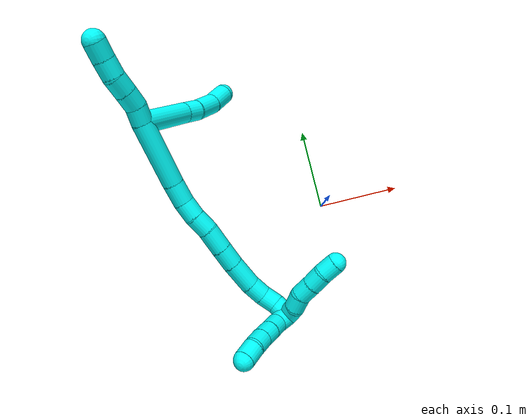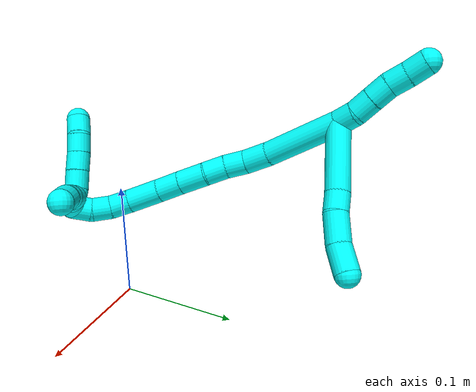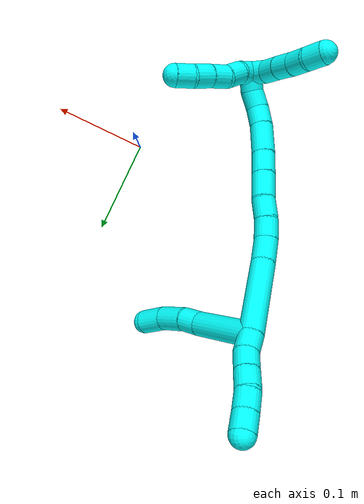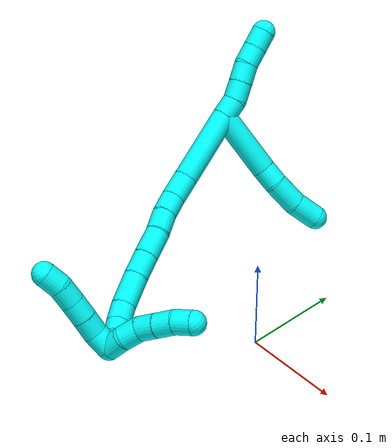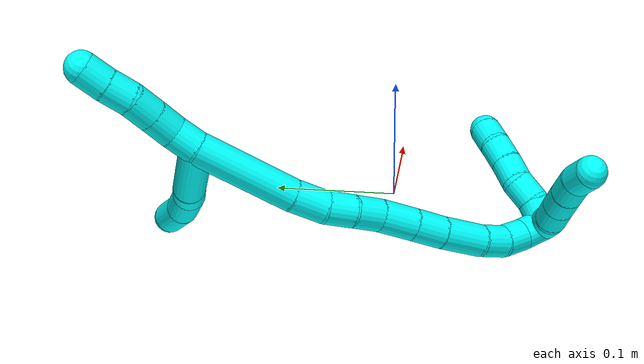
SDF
<sdf version="1.7">
 <world name="default">
  <model name="3">
   <static>0</static>
   <link name="3">
    <collision name="collision-cylinder-e_1_2_8">
     <pose>0.006269 0.002891 -0.034601 -3.05822 0.178631 -2.26987</pose>
     <geometry><cylinder><radius>0.0125</radius><length>0.070567</length></cylinder></geometry>
     <surface>
      <friction><ode><mu>1.16</mu><mu2>1.16</mu2><slip1>0</slip1><slip2>0</slip2></ode></friction>
      <contact><ode><kp>1e+06</kp><kd>1</kd><max_vel>0</max_vel><min_depth>0.001</min_depth></ode></contact>
     </surface>
    </collision>
    <visual name="visual-cylinder-e_1_2_8">
     <pose>0.006269 0.002891 -0.034601 -3.05822 0.178631 -2.26987</pose>
     <geometry><cylinder><radius>0.0125</radius><length>0.070567</length></cylinder></geometry>
     <material><ambient>0.003922 1 0.996078 1</ambient></material>
    </visual>
    <collision name="collision-cylinder-e_2_8_9">
     <pose>0.01573 0.007449 -0.078691 -2.96774 0.319937 -2.15115</pose>
     <geometry><cylinder><radius>0.0125</radius><length>0.020296</length></cylinder></geometry>
     <surface>
      <friction><ode><mu>1.16</mu><mu2>1.16</mu2><slip1>0</slip1><slip2>0</slip2></ode></friction>
      <contact><ode><kp>1e+06</kp><kd>1</kd><max_vel>0</max_vel><min_depth>0.001</min_depth></ode></contact>
     </surface>
    </collision>
    <visual name="visual-cylinder-e_2_8_9">
     <pose>0.01573 0.007449 -0.078691 -2.96774 0.319937 -2.15115</pose>
     <geometry><cylinder><radius>0.0125</radius><length>0.020296</length></cylinder></geometry>
     <material><ambient>0.003922 1 0.996078 1</ambient></material>
    </visual>
    <collision name="collision-cylinder-e_3_9_10">
     <pose>0.020851 0.011928 -0.103269 -2.95734 0.125012 -1.19084</pose>
     <geometry><cylinder><radius>0.0125</radius><length>0.030942</length></cylinder></geometry>
     <surface>
      <friction><ode><mu>1.16</mu><mu2>1.16</mu2><slip1>0</slip1><slip2>0</slip2></ode></friction>
      <contact><ode><kp>1e+06</kp><kd>1</kd><max_vel>0</max_vel><min_depth>0.001</min_depth></ode></contact>
     </surface>
    </collision>
    <visual name="visual-cylinder-e_3_9_10">
     <pose>0.020851 0.011928 -0.103269 -2.95734 0.125012 -1.19084</pose>
     <geometry><cylinder><radius>0.0125</radius><length>0.030942</length></cylinder></geometry>
     <material><ambient>0.003922 1 0.996078 1</ambient></material>
    </visual>
    <collision name="collision-cylinder-e_4_10_6">
     <pose>0.022864 0.019588 -0.131597 -2.79057 0.005952 -0.033558</pose>
     <geometry><cylinder><radius>0.0125</radius><length>0.028195</length></cylinder></geometry>
     <surface>
      <friction><ode><mu>1.16</mu><mu2>1.16</mu2><slip1>0</slip1><slip2>0</slip2></ode></friction>
      <contact><ode><kp>1e+06</kp><kd>1</kd><max_vel>0</max_vel><min_depth>0.001</min_depth></ode></contact>
     </surface>
    </collision>
    <visual name="visual-cylinder-e_4_10_6">
     <pose>0.022864 0.019588 -0.131597 -2.79057 0.005952 -0.033558</pose>
     <geometry><cylinder><radius>0.0125</radius><length>0.028195</length></cylinder></geometry>
     <material><ambient>0.003922 1 0.996078 1</ambient></material>
    </visual>
    <collision name="collision-cylinder-e_1_2_11">
     <pose>-0.004847 0.008318 0.002706 -1.25623 -0.505963 0.37117</pose>
     <geometry><cylinder><radius>0.0125</radius><length>0.02</length></cylinder></geometry>
     <surface>
      <friction><ode><mu>1.16</mu><mu2>1.16</mu2><slip1>0</slip1><slip2>0</slip2></ode></friction>
      <contact><ode><kp>1e+06</kp><kd>1</kd><max_vel>0</max_vel><min_depth>0.001</min_depth></ode></contact>
     </surface>
    </collision>
    <visual name="visual-cylinder-e_1_2_11">
     <pose>-0.004847 0.008318 0.002706 -1.25623 -0.505963 0.37117</pose>
     <geometry><cylinder><radius>0.0125</radius><length>0.02</length></cylinder></geometry>
     <material><ambient>0.003922 1 0.996078 1</ambient></material>
    </visual>
    <collision name="collision-cylinder-e_2_11_12">
     <pose>-0.015046 0.023404 0.010467 -0.929395 -0.564817 0.288899</pose>
     <geometry><cylinder><radius>0.0125</radius><length>0.02</length></cylinder></geometry>
     <surface>
      <friction><ode><mu>1.16</mu><mu2>1.16</mu2><slip1>0</slip1><slip2>0</slip2></ode></friction>
      <contact><ode><kp>1e+06</kp><kd>1</kd><max_vel>0</max_vel><min_depth>0.001</min_depth></ode></contact>
     </surface>
    </collision>
    <visual name="visual-cylinder-e_2_11_12">
     <pose>-0.015046 0.023404 0.010467 -0.929395 -0.564817 0.288899</pose>
     <geometry><cylinder><radius>0.0125</radius><length>0.02</length></cylinder></geometry>
     <material><ambient>0.003922 1 0.996078 1</ambient></material>
    </visual>
    <collision name="collision-cylinder-e_3_12_13">
     <pose>-0.025897 0.036807 0.020594 -0.917978 -0.582193 0.29399</pose>
     <geometry><cylinder><radius>0.0125</radius><length>0.02</length></cylinder></geometry>
     <surface>
      <friction><ode><mu>1.16</mu><mu2>1.16</mu2><slip1>0</slip1><slip2>0</slip2></ode></friction>
      <contact><ode><kp>1e+06</kp><kd>1</kd><max_vel>0</max_vel><min_depth>0.001</min_depth></ode></contact>
     </surface>
    </collision>
    <visual name="visual-cylinder-e_3_12_13">
     <pose>-0.025897 0.036807 0.020594 -0.917978 -0.582193 0.29399</pose>
     <geometry><cylinder><radius>0.0125</radius><length>0.02</length></cylinder></geometry>
     <material><ambient>0.003922 1 0.996078 1</ambient></material>
    </visual>
    <collision name="collision-cylinder-e_4_13_14">
     <pose>-0.03733 0.050841 0.028835 -1.16631 -0.635363 0.427217</pose>
     <geometry><cylinder><radius>0.0125</radius><length>0.02</length></cylinder></geometry>
     <surface>
      <friction><ode><mu>1.16</mu><mu2>1.16</mu2><slip1>0</slip1><slip2>0</slip2></ode></friction>
      <contact><ode><kp>1e+06</kp><kd>1</kd><max_vel>0</max_vel><min_depth>0.001</min_depth></ode></contact>
     </surface>
    </collision>
    <visual name="visual-cylinder-e_4_13_14">
     <pose>-0.03733 0.050841 0.028835 -1.16631 -0.635363 0.427217</pose>
     <geometry><cylinder><radius>0.0125</radius><length>0.02</length></cylinder></geometry>
     <material><ambient>0.003922 1 0.996078 1</ambient></material>
    </visual>
    <collision name="collision-cylinder-e_5_14_5">
     <pose>-0.048503 0.065988 0.035544 -1.14201 -0.551318 0.359488</pose>
     <geometry><cylinder><radius>0.0125</radius><length>0.02</length></cylinder></geometry>
     <surface>
      <friction><ode><mu>1.16</mu><mu2>1.16</mu2><slip1>0</slip1><slip2>0</slip2></ode></friction>
      <contact><ode><kp>1e+06</kp><kd>1</kd><max_vel>0</max_vel><min_depth>0.001</min_depth></ode></contact>
     </surface>
    </collision>
    <visual name="visual-cylinder-e_5_14_5">
     <pose>-0.048503 0.065988 0.035544 -1.14201 -0.551318 0.359488</pose>
     <geometry><cylinder><radius>0.0125</radius><length>0.02</length></cylinder></geometry>
     <material><ambient>0.003922 1 0.996078 1</ambient></material>
    </visual>
    <collision name="collision-cylinder-e_1_2_15">
     <pose>0.024172 -0.029477 -0.009273 1.87557 0.663817 0.878283</pose>
     <geometry><cylinder><radius>0.0125</radius><length>0.078465</length></cylinder></geometry>
     <surface>
      <friction><ode><mu>1.16</mu><mu2>1.16</mu2><slip1>0</slip1><slip2>0</slip2></ode></friction>
      <contact><ode><kp>1e+06</kp><kd>1</kd><max_vel>0</max_vel><min_depth>0.001</min_depth></ode></contact>
     </surface>
    </collision>
    <visual name="visual-cylinder-e_1_2_15">
     <pose>0.024172 -0.029477 -0.009273 1.87557 0.663817 0.878283</pose>
     <geometry><cylinder><radius>0.0125</radius><length>0.078465</length></cylinder></geometry>
     <material><ambient>0.003922 1 0.996078 1</ambient></material>
    </visual>
    <collision name="collision-cylinder-e_2_15_16">
     <pose>0.057369 -0.068147 -0.020948 1.82646 0.759673 0.954285</pose>
     <geometry><cylinder><radius>0.0125</radius><length>0.026209</length></cylinder></geometry>
     <surface>
      <friction><ode><mu>1.16</mu><mu2>1.16</mu2><slip1>0</slip1><slip2>0</slip2></ode></friction>
      <contact><ode><kp>1e+06</kp><kd>1</kd><max_vel>0</max_vel><min_depth>0.001</min_depth></ode></contact>
     </surface>
    </collision>
    <visual name="visual-cylinder-e_2_15_16">
     <pose>0.057369 -0.068147 -0.020948 1.82646 0.759673 0.954285</pose>
     <geometry><cylinder><radius>0.0125</radius><length>0.026209</length></cylinder></geometry>
     <material><ambient>0.003922 1 0.996078 1</ambient></material>
    </visual>
    <collision name="collision-cylinder-e_3_16_17">
     <pose>0.075382 -0.083385 -0.024685 1.78791 0.967638 1.15839</pose>
     <geometry><cylinder><radius>0.0125</radius><length>0.021828</length></cylinder></geometry>
     <surface>
      <friction><ode><mu>1.16</mu><mu2>1.16</mu2><slip1>0</slip1><slip2>0</slip2></ode></friction>
      <contact><ode><kp>1e+06</kp><kd>1</kd><max_vel>0</max_vel><min_depth>0.001</min_depth></ode></contact>
     </surface>
    </collision>
    <visual name="visual-cylinder-e_3_16_17">
     <pose>0.075382 -0.083385 -0.024685 1.78791 0.967638 1.15839</pose>
     <geometry><cylinder><radius>0.0125</radius><length>0.021828</length></cylinder></geometry>
     <material><ambient>0.003922 1 0.996078 1</ambient></material>
    </visual>
    <collision name="collision-cylinder-e_4_17_18">
     <pose>0.093966 -0.094844 -0.028695 2.03 1.00915 1.45358</pose>
     <geometry><cylinder><radius>0.0125</radius><length>0.022675</length></cylinder></geometry>
     <surface>
      <friction><ode><mu>1.16</mu><mu2>1.16</mu2><slip1>0</slip1><slip2>0</slip2></ode></friction>
      <contact><ode><kp>1e+06</kp><kd>1</kd><max_vel>0</max_vel><min_depth>0.001</min_depth></ode></contact>
     </surface>
    </collision>
    <visual name="visual-cylinder-e_4_17_18">
     <pose>0.093966 -0.094844 -0.028695 2.03 1.00915 1.45358</pose>
     <geometry><cylinder><radius>0.0125</radius><length>0.022675</length></cylinder></geometry>
     <material><ambient>0.003922 1 0.996078 1</ambient></material>
    </visual>
    <collision name="collision-cylinder-e_5_18_19">
     <pose>0.114623 -0.10897 -0.034352 1.90034 0.87646 1.16053</pose>
     <geometry><cylinder><radius>0.0125</radius><length>0.028786</length></cylinder></geometry>
     <surface>
      <friction><ode><mu>1.16</mu><mu2>1.16</mu2><slip1>0</slip1><slip2>0</slip2></ode></friction>
      <contact><ode><kp>1e+06</kp><kd>1</kd><max_vel>0</max_vel><min_depth>0.001</min_depth></ode></contact>
     </surface>
    </collision>
    <visual name="visual-cylinder-e_5_18_19">
     <pose>0.114623 -0.10897 -0.034352 1.90034 0.87646 1.16053</pose>
     <geometry><cylinder><radius>0.0125</radius><length>0.028786</length></cylinder></geometry>
     <material><ambient>0.003922 1 0.996078 1</ambient></material>
    </visual>
    <collision name="collision-cylinder-e_6_19_20">
     <pose>0.135288 -0.125231 -0.04016 1.92931 0.872651 1.18432</pose>
     <geometry><cylinder><radius>0.0125</radius><length>0.025075</length></cylinder></geometry>
     <surface>
      <friction><ode><mu>1.16</mu><mu2>1.16</mu2><slip1>0</slip1><slip2>0</slip2></ode></friction>
      <contact><ode><kp>1e+06</kp><kd>1</kd><max_vel>0</max_vel><min_depth>0.001</min_depth></ode></contact>
     </surface>
    </collision>
    <visual name="visual-cylinder-e_6_19_20">
     <pose>0.135288 -0.125231 -0.04016 1.92931 0.872651 1.18432</pose>
     <geometry><cylinder><radius>0.0125</radius><length>0.025075</length></cylinder></geometry>
     <material><ambient>0.003922 1 0.996078 1</ambient></material>
    </visual>
    <collision name="collision-cylinder-e_7_20_21">
     <pose>0.159094 -0.14231 -0.046972 1.96668 0.941855 1.30557</pose>
     <geometry><cylinder><radius>0.0125</radius><length>0.035124</length></cylinder></geometry>
     <surface>
      <friction><ode><mu>1.16</mu><mu2>1.16</mu2><slip1>0</slip1><slip2>0</slip2></ode></friction>
      <contact><ode><kp>1e+06</kp><kd>1</kd><max_vel>0</max_vel><min_depth>0.001</min_depth></ode></contact>
     </surface>
    </collision>
    <visual name="visual-cylinder-e_7_20_21">
     <pose>0.159094 -0.14231 -0.046972 1.96668 0.941855 1.30557</pose>
     <geometry><cylinder><radius>0.0125</radius><length>0.035124</length></cylinder></geometry>
     <material><ambient>0.003922 1 0.996078 1</ambient></material>
    </visual>
    <collision name="collision-cylinder-e_8_21_22">
     <pose>0.182922 -0.156049 -0.053412 2.0993 1.10241 1.63921</pose>
     <geometry><cylinder><radius>0.0125</radius><length>0.021577</length></cylinder></geometry>
     <surface>
      <friction><ode><mu>1.16</mu><mu2>1.16</mu2><slip1>0</slip1><slip2>0</slip2></ode></friction>
      <contact><ode><kp>1e+06</kp><kd>1</kd><max_vel>0</max_vel><min_depth>0.001</min_depth></ode></contact>
     </surface>
    </collision>
    <visual name="visual-cylinder-e_8_21_22">
     <pose>0.182922 -0.156049 -0.053412 2.0993 1.10241 1.63921</pose>
     <geometry><cylinder><radius>0.0125</radius><length>0.021577</length></cylinder></geometry>
     <material><ambient>0.003922 1 0.996078 1</ambient></material>
    </visual>
    <collision name="collision-cylinder-e_9_22_23">
     <pose>0.202495 -0.16178 -0.056724 2.08254 1.39666 1.92386</pose>
     <geometry><cylinder><radius>0.0125</radius><length>0.020198</length></cylinder></geometry>
     <surface>
      <friction><ode><mu>1.16</mu><mu2>1.16</mu2><slip1>0</slip1><slip2>0</slip2></ode></friction>
      <contact><ode><kp>1e+06</kp><kd>1</kd><max_vel>0</max_vel><min_depth>0.001</min_depth></ode></contact>
     </surface>
    </collision>
    <visual name="visual-cylinder-e_9_22_23">
     <pose>0.202495 -0.16178 -0.056724 2.08254 1.39666 1.92386</pose>
     <geometry><cylinder><radius>0.0125</radius><length>0.020198</length></cylinder></geometry>
     <material><ambient>0.003922 1 0.996078 1</ambient></material>
    </visual>
    <collision name="collision-cylinder-e_10_23_1">
     <pose>0.222057 -0.164965 -0.055258 0.620031 1.28219 0.469306</pose>
     <geometry><cylinder><radius>0.0125</radius><length>0.020063</length></cylinder></geometry>
     <surface>
      <friction><ode><mu>1.16</mu><mu2>1.16</mu2><slip1>0</slip1><slip2>0</slip2></ode></friction>
      <contact><ode><kp>1e+06</kp><kd>1</kd><max_vel>0</max_vel><min_depth>0.001</min_depth></ode></contact>
     </surface>
    </collision>
    <visual name="visual-cylinder-e_10_23_1">
     <pose>0.222057 -0.164965 -0.055258 0.620031 1.28219 0.469306</pose>
     <geometry><cylinder><radius>0.0125</radius><length>0.020063</length></cylinder></geometry>
     <material><ambient>0.003922 1 0.996078 1</ambient></material>
    </visual>
    <collision name="collision-cylinder-e_1_1_24">
     <pose>0.228871 -0.168778 -0.043579 0.226313 -0.284085 -0.0325</pose>
     <geometry><cylinder><radius>0.0125</radius><length>0.02</length></cylinder></geometry>
     <surface>
      <friction><ode><mu>1.16</mu><mu2>1.16</mu2><slip1>0</slip1><slip2>0</slip2></ode></friction>
      <contact><ode><kp>1e+06</kp><kd>1</kd><max_vel>0</max_vel><min_depth>0.001</min_depth></ode></contact>
     </surface>
    </collision>
    <visual name="visual-cylinder-e_1_1_24">
     <pose>0.228871 -0.168778 -0.043579 0.226313 -0.284085 -0.0325</pose>
     <geometry><cylinder><radius>0.0125</radius><length>0.02</length></cylinder></geometry>
     <material><ambient>0.003922 1 0.996078 1</ambient></material>
    </visual>
    <collision name="collision-cylinder-e_2_24_25">
     <pose>0.225039 -0.170884 -0.024278 -0.004771 -0.103106 0.000246</pose>
     <geometry><cylinder><radius>0.0125</radius><length>0.02</length></cylinder></geometry>
     <surface>
      <friction><ode><mu>1.16</mu><mu2>1.16</mu2><slip1>0</slip1><slip2>0</slip2></ode></friction>
      <contact><ode><kp>1e+06</kp><kd>1</kd><max_vel>0</max_vel><min_depth>0.001</min_depth></ode></contact>
     </surface>
    </collision>
    <visual name="visual-cylinder-e_2_24_25">
     <pose>0.225039 -0.170884 -0.024278 -0.004771 -0.103106 0.000246</pose>
     <geometry><cylinder><radius>0.0125</radius><length>0.02</length></cylinder></geometry>
     <material><ambient>0.003922 1 0.996078 1</ambient></material>
    </visual>
    <collision name="collision-cylinder-e_3_25_26">
     <pose>0.222688 -0.171146 -0.004424 0.031214 -0.132606 -0.002073</pose>
     <geometry><cylinder><radius>0.0125</radius><length>0.02</length></cylinder></geometry>
     <surface>
      <friction><ode><mu>1.16</mu><mu2>1.16</mu2><slip1>0</slip1><slip2>0</slip2></ode></friction>
      <contact><ode><kp>1e+06</kp><kd>1</kd><max_vel>0</max_vel><min_depth>0.001</min_depth></ode></contact>
     </surface>
    </collision>
    <visual name="visual-cylinder-e_3_25_26">
     <pose>0.222688 -0.171146 -0.004424 0.031214 -0.132606 -0.002073</pose>
     <geometry><cylinder><radius>0.0125</radius><length>0.02</length></cylinder></geometry>
     <material><ambient>0.003922 1 0.996078 1</ambient></material>
    </visual>
    <collision name="collision-cylinder-e_4_26_27">
     <pose>0.220664 -0.171702 0.015456 0.024721 -0.070174 -0.000868</pose>
     <geometry><cylinder><radius>0.0125</radius><length>0.02</length></cylinder></geometry>
     <surface>
      <friction><ode><mu>1.16</mu><mu2>1.16</mu2><slip1>0</slip1><slip2>0</slip2></ode></friction>
      <contact><ode><kp>1e+06</kp><kd>1</kd><max_vel>0</max_vel><min_depth>0.001</min_depth></ode></contact>
     </surface>
    </collision>
    <visual name="visual-cylinder-e_4_26_27">
     <pose>0.220664 -0.171702 0.015456 0.024721 -0.070174 -0.000868</pose>
     <geometry><cylinder><radius>0.0125</radius><length>0.02</length></cylinder></geometry>
     <material><ambient>0.003922 1 0.996078 1</ambient></material>
    </visual>
    <collision name="collision-cylinder-e_5_27_4">
     <pose>0.219361 -0.174727 0.035015 0.282073 -0.060272 -0.00856</pose>
     <geometry><cylinder><radius>0.0125</radius><length>0.02</length></cylinder></geometry>
     <surface>
      <friction><ode><mu>1.16</mu><mu2>1.16</mu2><slip1>0</slip1><slip2>0</slip2></ode></friction>
      <contact><ode><kp>1e+06</kp><kd>1</kd><max_vel>0</max_vel><min_depth>0.001</min_depth></ode></contact>
     </surface>
    </collision>
    <visual name="visual-cylinder-e_5_27_4">
     <pose>0.219361 -0.174727 0.035015 0.282073 -0.060272 -0.00856</pose>
     <geometry><cylinder><radius>0.0125</radius><length>0.02</length></cylinder></geometry>
     <material><ambient>0.003922 1 0.996078 1</ambient></material>
    </visual>
    <collision name="collision-cylinder-e_1_1_28">
     <pose>0.233685 -0.157093 -0.050671 -1.33771 0.202469 -0.160235</pose>
     <geometry><cylinder><radius>0.0125</radius><length>0.02</length></cylinder></geometry>
     <surface>
      <friction><ode><mu>1.16</mu><mu2>1.16</mu2><slip1>0</slip1><slip2>0</slip2></ode></friction>
      <contact><ode><kp>1e+06</kp><kd>1</kd><max_vel>0</max_vel><min_depth>0.001</min_depth></ode></contact>
     </surface>
    </collision>
    <visual name="visual-cylinder-e_1_1_28">
     <pose>0.233685 -0.157093 -0.050671 -1.33771 0.202469 -0.160235</pose>
     <geometry><cylinder><radius>0.0125</radius><length>0.02</length></cylinder></geometry>
     <material><ambient>0.003922 1 0.996078 1</ambient></material>
    </visual>
    <collision name="collision-cylinder-e_2_28_29">
     <pose>0.235845 -0.137569 -0.048073 -1.53726 0.014948 -0.014455</pose>
     <geometry><cylinder><radius>0.0125</radius><length>0.02</length></cylinder></geometry>
     <surface>
      <friction><ode><mu>1.16</mu><mu2>1.16</mu2><slip1>0</slip1><slip2>0</slip2></ode></friction>
      <contact><ode><kp>1e+06</kp><kd>1</kd><max_vel>0</max_vel><min_depth>0.001</min_depth></ode></contact>
     </surface>
    </collision>
    <visual name="visual-cylinder-e_2_28_29">
     <pose>0.235845 -0.137569 -0.048073 -1.53726 0.014948 -0.014455</pose>
     <geometry><cylinder><radius>0.0125</radius><length>0.02</length></cylinder></geometry>
     <material><ambient>0.003922 1 0.996078 1</ambient></material>
    </visual>
    <collision name="collision-cylinder-e_3_29_30">
     <pose>0.239257 -0.118175 -0.048737 -1.67664 0.332315 -0.368697</pose>
     <geometry><cylinder><radius>0.0125</radius><length>0.02</length></cylinder></geometry>
     <surface>
      <friction><ode><mu>1.16</mu><mu2>1.16</mu2><slip1>0</slip1><slip2>0</slip2></ode></friction>
      <contact><ode><kp>1e+06</kp><kd>1</kd><max_vel>0</max_vel><min_depth>0.001</min_depth></ode></contact>
     </surface>
    </collision>
    <visual name="visual-cylinder-e_3_29_30">
     <pose>0.239257 -0.118175 -0.048737 -1.67664 0.332315 -0.368697</pose>
     <geometry><cylinder><radius>0.0125</radius><length>0.02</length></cylinder></geometry>
     <material><ambient>0.003922 1 0.996078 1</ambient></material>
    </visual>
    <collision name="collision-cylinder-e_4_30_31">
     <pose>0.245347 -0.09927 -0.051021 -1.7052 0.286709 -0.327398</pose>
     <geometry><cylinder><radius>0.0125</radius><length>0.02</length></cylinder></geometry>
     <surface>
      <friction><ode><mu>1.16</mu><mu2>1.16</mu2><slip1>0</slip1><slip2>0</slip2></ode></friction>
      <contact><ode><kp>1e+06</kp><kd>1</kd><max_vel>0</max_vel><min_depth>0.001</min_depth></ode></contact>
     </surface>
    </collision>
    <visual name="visual-cylinder-e_4_30_31">
     <pose>0.245347 -0.09927 -0.051021 -1.7052 0.286709 -0.327398</pose>
     <geometry><cylinder><radius>0.0125</radius><length>0.02</length></cylinder></geometry>
     <material><ambient>0.003922 1 0.996078 1</ambient></material>
    </visual>
    <collision name="collision-cylinder-e_5_31_3">
     <pose>0.251943 -0.081012 -0.055339 -1.90435 0.386312 -0.536321</pose>
     <geometry><cylinder><radius>0.0125</radius><length>0.02</length></cylinder></geometry>
     <surface>
      <friction><ode><mu>1.16</mu><mu2>1.16</mu2><slip1>0</slip1><slip2>0</slip2></ode></friction>
      <contact><ode><kp>1e+06</kp><kd>1</kd><max_vel>0</max_vel><min_depth>0.001</min_depth></ode></contact>
     </surface>
    </collision>
    <visual name="visual-cylinder-e_5_31_3">
     <pose>0.251943 -0.081012 -0.055339 -1.90435 0.386312 -0.536321</pose>
     <geometry><cylinder><radius>0.0125</radius><length>0.02</length></cylinder></geometry>
     <material><ambient>0.003922 1 0.996078 1</ambient></material>
    </visual>
    <collision name="collision-sphere-3">
     <pose>0.255711 -0.07226 -0.058372 0 -0 0</pose>
     <geometry><sphere><radius>0.0125</radius></sphere></geometry>
     <surface>
      <friction><ode><mu>1.16</mu><mu2>1.16</mu2><slip1>0</slip1><slip2>0</slip2></ode></friction>
      <contact><ode><kp>1e+06</kp><kd>1</kd><max_vel>0</max_vel><min_depth>0.001</min_depth></ode></contact>
     </surface>
    </collision>
    <visual name="visual-sphere-3">
     <pose>0.255711 -0.07226 -0.058372 0 -0 0</pose>
     <geometry><sphere><radius>0.0125</radius></sphere></geometry>
     <material><ambient>0.003922 1 0.996078 1</ambient></material>
    </visual>
    <collision name="collision-sphere-31">
     <pose>0.248175 -0.089765 -0.052306 0 -0 0</pose>
     <geometry><sphere><radius>0.0125</radius></sphere></geometry>
     <surface>
      <friction><ode><mu>1.16</mu><mu2>1.16</mu2><slip1>0</slip1><slip2>0</slip2></ode></friction>
      <contact><ode><kp>1e+06</kp><kd>1</kd><max_vel>0</max_vel><min_depth>0.001</min_depth></ode></contact>
     </surface>
    </collision>
    <visual name="visual-sphere-31">
     <pose>0.248175 -0.089765 -0.052306 0 -0 0</pose>
     <geometry><sphere><radius>0.0125</radius></sphere></geometry>
     <material><ambient>0.003922 1 0.996078 1</ambient></material>
    </visual>
    <collision name="collision-sphere-30">
     <pose>0.242519 -0.108776 -0.049735 0 -0 0</pose>
     <geometry><sphere><radius>0.0125</radius></sphere></geometry>
     <surface>
      <friction><ode><mu>1.16</mu><mu2>1.16</mu2><slip1>0</slip1><slip2>0</slip2></ode></friction>
      <contact><ode><kp>1e+06</kp><kd>1</kd><max_vel>0</max_vel><min_depth>0.001</min_depth></ode></contact>
     </surface>
    </collision>
    <visual name="visual-sphere-30">
     <pose>0.242519 -0.108776 -0.049735 0 -0 0</pose>
     <geometry><sphere><radius>0.0125</radius></sphere></geometry>
     <material><ambient>0.003922 1 0.996078 1</ambient></material>
    </visual>
    <collision name="collision-sphere-29">
     <pose>0.235995 -0.127575 -0.047738 0 -0 0</pose>
     <geometry><sphere><radius>0.0125</radius></sphere></geometry>
     <surface>
      <friction><ode><mu>1.16</mu><mu2>1.16</mu2><slip1>0</slip1><slip2>0</slip2></ode></friction>
      <contact><ode><kp>1e+06</kp><kd>1</kd><max_vel>0</max_vel><min_depth>0.001</min_depth></ode></contact>
     </surface>
    </collision>
    <visual name="visual-sphere-29">
     <pose>0.235995 -0.127575 -0.047738 0 -0 0</pose>
     <geometry><sphere><radius>0.0125</radius></sphere></geometry>
     <material><ambient>0.003922 1 0.996078 1</ambient></material>
    </visual>
    <collision name="collision-sphere-28">
     <pose>0.235696 -0.147562 -0.048409 0 -0 0</pose>
     <geometry><sphere><radius>0.0125</radius></sphere></geometry>
     <surface>
      <friction><ode><mu>1.16</mu><mu2>1.16</mu2><slip1>0</slip1><slip2>0</slip2></ode></friction>
      <contact><ode><kp>1e+06</kp><kd>1</kd><max_vel>0</max_vel><min_depth>0.001</min_depth></ode></contact>
     </surface>
    </collision>
    <visual name="visual-sphere-28">
     <pose>0.235696 -0.147562 -0.048409 0 -0 0</pose>
     <geometry><sphere><radius>0.0125</radius></sphere></geometry>
     <material><ambient>0.003922 1 0.996078 1</ambient></material>
    </visual>
    <collision name="collision-sphere-4">
     <pose>0.218759 -0.177505 0.044603 0 -0 0</pose>
     <geometry><sphere><radius>0.0125</radius></sphere></geometry>
     <surface>
      <friction><ode><mu>1.16</mu><mu2>1.16</mu2><slip1>0</slip1><slip2>0</slip2></ode></friction>
      <contact><ode><kp>1e+06</kp><kd>1</kd><max_vel>0</max_vel><min_depth>0.001</min_depth></ode></contact>
     </surface>
    </collision>
    <visual name="visual-sphere-4">
     <pose>0.218759 -0.177505 0.044603 0 -0 0</pose>
     <geometry><sphere><radius>0.0125</radius></sphere></geometry>
     <material><ambient>0.003922 1 0.996078 1</ambient></material>
    </visual>
    <collision name="collision-sphere-27">
     <pose>0.219963 -0.171948 0.025428 0 -0 0</pose>
     <geometry><sphere><radius>0.0125</radius></sphere></geometry>
     <surface>
      <friction><ode><mu>1.16</mu><mu2>1.16</mu2><slip1>0</slip1><slip2>0</slip2></ode></friction>
      <contact><ode><kp>1e+06</kp><kd>1</kd><max_vel>0</max_vel><min_depth>0.001</min_depth></ode></contact>
     </surface>
    </collision>
    <visual name="visual-sphere-27">
     <pose>0.219963 -0.171948 0.025428 0 -0 0</pose>
     <geometry><sphere><radius>0.0125</radius></sphere></geometry>
     <material><ambient>0.003922 1 0.996078 1</ambient></material>
    </visual>
    <collision name="collision-sphere-26">
     <pose>0.221366 -0.171455 0.005483 0 -0 0</pose>
     <geometry><sphere><radius>0.0125</radius></sphere></geometry>
     <surface>
      <friction><ode><mu>1.16</mu><mu2>1.16</mu2><slip1>0</slip1><slip2>0</slip2></ode></friction>
      <contact><ode><kp>1e+06</kp><kd>1</kd><max_vel>0</max_vel><min_depth>0.001</min_depth></ode></contact>
     </surface>
    </collision>
    <visual name="visual-sphere-26">
     <pose>0.221366 -0.171455 0.005483 0 -0 0</pose>
     <geometry><sphere><radius>0.0125</radius></sphere></geometry>
     <material><ambient>0.003922 1 0.996078 1</ambient></material>
    </visual>
    <collision name="collision-sphere-25">
     <pose>0.22401 -0.170837 -0.014331 0 -0 0</pose>
     <geometry><sphere><radius>0.0125</radius></sphere></geometry>
     <surface>
      <friction><ode><mu>1.16</mu><mu2>1.16</mu2><slip1>0</slip1><slip2>0</slip2></ode></friction>
      <contact><ode><kp>1e+06</kp><kd>1</kd><max_vel>0</max_vel><min_depth>0.001</min_depth></ode></contact>
     </surface>
    </collision>
    <visual name="visual-sphere-25">
     <pose>0.22401 -0.170837 -0.014331 0 -0 0</pose>
     <geometry><sphere><radius>0.0125</radius></sphere></geometry>
     <material><ambient>0.003922 1 0.996078 1</ambient></material>
    </visual>
    <collision name="collision-sphere-24">
     <pose>0.226068 -0.170932 -0.034225 0 -0 0</pose>
     <geometry><sphere><radius>0.0125</radius></sphere></geometry>
     <surface>
      <friction><ode><mu>1.16</mu><mu2>1.16</mu2><slip1>0</slip1><slip2>0</slip2></ode></friction>
      <contact><ode><kp>1e+06</kp><kd>1</kd><max_vel>0</max_vel><min_depth>0.001</min_depth></ode></contact>
     </surface>
    </collision>
    <visual name="visual-sphere-24">
     <pose>0.226068 -0.170932 -0.034225 0 -0 0</pose>
     <geometry><sphere><radius>0.0125</radius></sphere></geometry>
     <material><ambient>0.003922 1 0.996078 1</ambient></material>
    </visual>
    <collision name="collision-sphere-1">
     <pose>0.231674 -0.166624 -0.052934 0 -0 0</pose>
     <geometry><sphere><radius>0.0125</radius></sphere></geometry>
     <surface>
      <friction><ode><mu>1.16</mu><mu2>1.16</mu2><slip1>0</slip1><slip2>0</slip2></ode></friction>
      <contact><ode><kp>1e+06</kp><kd>1</kd><max_vel>0</max_vel><min_depth>0.001</min_depth></ode></contact>
     </surface>
    </collision>
    <visual name="visual-sphere-1">
     <pose>0.231674 -0.166624 -0.052934 0 -0 0</pose>
     <geometry><sphere><radius>0.0125</radius></sphere></geometry>
     <material><ambient>0.003922 1 0.996078 1</ambient></material>
    </visual>
    <collision name="collision-sphere-23">
     <pose>0.212441 -0.163306 -0.057581 0 -0 0</pose>
     <geometry><sphere><radius>0.0125</radius></sphere></geometry>
     <surface>
      <friction><ode><mu>1.16</mu><mu2>1.16</mu2><slip1>0</slip1><slip2>0</slip2></ode></friction>
      <contact><ode><kp>1e+06</kp><kd>1</kd><max_vel>0</max_vel><min_depth>0.001</min_depth></ode></contact>
     </surface>
    </collision>
    <visual name="visual-sphere-23">
     <pose>0.212441 -0.163306 -0.057581 0 -0 0</pose>
     <geometry><sphere><radius>0.0125</radius></sphere></geometry>
     <material><ambient>0.003922 1 0.996078 1</ambient></material>
    </visual>
    <collision name="collision-sphere-22">
     <pose>0.192548 -0.160255 -0.055867 0 -0 0</pose>
     <geometry><sphere><radius>0.0125</radius></sphere></geometry>
     <surface>
      <friction><ode><mu>1.16</mu><mu2>1.16</mu2><slip1>0</slip1><slip2>0</slip2></ode></friction>
      <contact><ode><kp>1e+06</kp><kd>1</kd><max_vel>0</max_vel><min_depth>0.001</min_depth></ode></contact>
     </surface>
    </collision>
    <visual name="visual-sphere-22">
     <pose>0.192548 -0.160255 -0.055867 0 -0 0</pose>
     <geometry><sphere><radius>0.0125</radius></sphere></geometry>
     <material><ambient>0.003922 1 0.996078 1</ambient></material>
    </visual>
    <collision name="collision-sphere-21">
     <pose>0.173295 -0.151843 -0.050956 0 -0 0</pose>
     <geometry><sphere><radius>0.0125</radius></sphere></geometry>
     <surface>
      <friction><ode><mu>1.16</mu><mu2>1.16</mu2><slip1>0</slip1><slip2>0</slip2></ode></friction>
      <contact><ode><kp>1e+06</kp><kd>1</kd><max_vel>0</max_vel><min_depth>0.001</min_depth></ode></contact>
     </surface>
    </collision>
    <visual name="visual-sphere-21">
     <pose>0.173295 -0.151843 -0.050956 0 -0 0</pose>
     <geometry><sphere><radius>0.0125</radius></sphere></geometry>
     <material><ambient>0.003922 1 0.996078 1</ambient></material>
    </visual>
    <collision name="collision-sphere-11">
     <pose>-0.009693 0.016636 0.005413 0 -0 0</pose>
     <geometry><sphere><radius>0.0125</radius></sphere></geometry>
     <surface>
      <friction><ode><mu>1.16</mu><mu2>1.16</mu2><slip1>0</slip1><slip2>0</slip2></ode></friction>
      <contact><ode><kp>1e+06</kp><kd>1</kd><max_vel>0</max_vel><min_depth>0.001</min_depth></ode></contact>
     </surface>
    </collision>
    <visual name="visual-sphere-11">
     <pose>-0.009693 0.016636 0.005413 0 -0 0</pose>
     <geometry><sphere><radius>0.0125</radius></sphere></geometry>
     <material><ambient>0.003922 1 0.996078 1</ambient></material>
    </visual>
    <collision name="collision-sphere-6">
     <pose>0.022948 0.024435 -0.144835 0 -0 0</pose>
     <geometry><sphere><radius>0.0125</radius></sphere></geometry>
     <surface>
      <friction><ode><mu>1.16</mu><mu2>1.16</mu2><slip1>0</slip1><slip2>0</slip2></ode></friction>
      <contact><ode><kp>1e+06</kp><kd>1</kd><max_vel>0</max_vel><min_depth>0.001</min_depth></ode></contact>
     </surface>
    </collision>
    <visual name="visual-sphere-6">
     <pose>0.022948 0.024435 -0.144835 0 -0 0</pose>
     <geometry><sphere><radius>0.0125</radius></sphere></geometry>
     <material><ambient>0.003922 1 0.996078 1</ambient></material>
    </visual>
    <collision name="collision-sphere-10">
     <pose>0.02278 0.01474 -0.118359 0 -0 0</pose>
     <geometry><sphere><radius>0.0125</radius></sphere></geometry>
     <surface>
      <friction><ode><mu>1.16</mu><mu2>1.16</mu2><slip1>0</slip1><slip2>0</slip2></ode></friction>
      <contact><ode><kp>1e+06</kp><kd>1</kd><max_vel>0</max_vel><min_depth>0.001</min_depth></ode></contact>
     </surface>
    </collision>
    <visual name="visual-sphere-10">
     <pose>0.02278 0.01474 -0.118359 0 -0 0</pose>
     <geometry><sphere><radius>0.0125</radius></sphere></geometry>
     <material><ambient>0.003922 1 0.996078 1</ambient></material>
    </visual>
    <collision name="collision-sphere-9">
     <pose>0.018922 0.009115 -0.088179 0 -0 0</pose>
     <geometry><sphere><radius>0.0125</radius></sphere></geometry>
     <surface>
      <friction><ode><mu>1.16</mu><mu2>1.16</mu2><slip1>0</slip1><slip2>0</slip2></ode></friction>
      <contact><ode><kp>1e+06</kp><kd>1</kd><max_vel>0</max_vel><min_depth>0.001</min_depth></ode></contact>
     </surface>
    </collision>
    <visual name="visual-sphere-9">
     <pose>0.018922 0.009115 -0.088179 0 -0 0</pose>
     <geometry><sphere><radius>0.0125</radius></sphere></geometry>
     <material><ambient>0.003922 1 0.996078 1</ambient></material>
    </visual>
    <collision name="collision-sphere-2">
     <geometry><sphere><radius>0.0125</radius></sphere></geometry>
     <surface>
      <friction><ode><mu>1.16</mu><mu2>1.16</mu2><slip1>0</slip1><slip2>0</slip2></ode></friction>
      <contact><ode><kp>1e+06</kp><kd>1</kd><max_vel>0</max_vel><min_depth>0.001</min_depth></ode></contact>
     </surface>
    </collision>
    <visual name="visual-sphere-2">
     <geometry><sphere><radius>0.0125</radius></sphere></geometry>
     <material><ambient>0.003922 1 0.996078 1</ambient></material>
    </visual>
    <collision name="collision-sphere-19">
     <pose>0.125684 -0.117685 -0.037332 0 -0 0</pose>
     <geometry><sphere><radius>0.0125</radius></sphere></geometry>
     <surface>
      <friction><ode><mu>1.16</mu><mu2>1.16</mu2><slip1>0</slip1><slip2>0</slip2></ode></friction>
      <contact><ode><kp>1e+06</kp><kd>1</kd><max_vel>0</max_vel><min_depth>0.001</min_depth></ode></contact>
     </surface>
    </collision>
    <visual name="visual-sphere-19">
     <pose>0.125684 -0.117685 -0.037332 0 -0 0</pose>
     <geometry><sphere><radius>0.0125</radius></sphere></geometry>
     <material><ambient>0.003922 1 0.996078 1</ambient></material>
    </visual>
    <collision name="collision-sphere-8">
     <pose>0.012539 0.005783 -0.069203 0 -0 0</pose>
     <geometry><sphere><radius>0.0125</radius></sphere></geometry>
     <surface>
      <friction><ode><mu>1.16</mu><mu2>1.16</mu2><slip1>0</slip1><slip2>0</slip2></ode></friction>
      <contact><ode><kp>1e+06</kp><kd>1</kd><max_vel>0</max_vel><min_depth>0.001</min_depth></ode></contact>
     </surface>
    </collision>
    <visual name="visual-sphere-8">
     <pose>0.012539 0.005783 -0.069203 0 -0 0</pose>
     <geometry><sphere><radius>0.0125</radius></sphere></geometry>
     <material><ambient>0.003922 1 0.996078 1</ambient></material>
    </visual>
    <collision name="collision-sphere-12">
     <pose>-0.020398 0.030172 0.015521 0 -0 0</pose>
     <geometry><sphere><radius>0.0125</radius></sphere></geometry>
     <surface>
      <friction><ode><mu>1.16</mu><mu2>1.16</mu2><slip1>0</slip1><slip2>0</slip2></ode></friction>
      <contact><ode><kp>1e+06</kp><kd>1</kd><max_vel>0</max_vel><min_depth>0.001</min_depth></ode></contact>
     </surface>
    </collision>
    <visual name="visual-sphere-12">
     <pose>-0.020398 0.030172 0.015521 0 -0 0</pose>
     <geometry><sphere><radius>0.0125</radius></sphere></geometry>
     <material><ambient>0.003922 1 0.996078 1</ambient></material>
    </visual>
    <collision name="collision-sphere-13">
     <pose>-0.031395 0.043442 0.025668 0 -0 0</pose>
     <geometry><sphere><radius>0.0125</radius></sphere></geometry>
     <surface>
      <friction><ode><mu>1.16</mu><mu2>1.16</mu2><slip1>0</slip1><slip2>0</slip2></ode></friction>
      <contact><ode><kp>1e+06</kp><kd>1</kd><max_vel>0</max_vel><min_depth>0.001</min_depth></ode></contact>
     </surface>
    </collision>
    <visual name="visual-sphere-13">
     <pose>-0.031395 0.043442 0.025668 0 -0 0</pose>
     <geometry><sphere><radius>0.0125</radius></sphere></geometry>
     <material><ambient>0.003922 1 0.996078 1</ambient></material>
    </visual>
    <collision name="collision-sphere-14">
     <pose>-0.043265 0.05824 0.032003 0 -0 0</pose>
     <geometry><sphere><radius>0.0125</radius></sphere></geometry>
     <surface>
      <friction><ode><mu>1.16</mu><mu2>1.16</mu2><slip1>0</slip1><slip2>0</slip2></ode></friction>
      <contact><ode><kp>1e+06</kp><kd>1</kd><max_vel>0</max_vel><min_depth>0.001</min_depth></ode></contact>
     </surface>
    </collision>
    <visual name="visual-sphere-14">
     <pose>-0.043265 0.05824 0.032003 0 -0 0</pose>
     <geometry><sphere><radius>0.0125</radius></sphere></geometry>
     <material><ambient>0.003922 1 0.996078 1</ambient></material>
    </visual>
    <collision name="collision-sphere-5">
     <pose>-0.053741 0.073735 0.039086 0 -0 0</pose>
     <geometry><sphere><radius>0.0125</radius></sphere></geometry>
     <surface>
      <friction><ode><mu>1.16</mu><mu2>1.16</mu2><slip1>0</slip1><slip2>0</slip2></ode></friction>
      <contact><ode><kp>1e+06</kp><kd>1</kd><max_vel>0</max_vel><min_depth>0.001</min_depth></ode></contact>
     </surface>
    </collision>
    <visual name="visual-sphere-5">
     <pose>-0.053741 0.073735 0.039086 0 -0 0</pose>
     <geometry><sphere><radius>0.0125</radius></sphere></geometry>
     <material><ambient>0.003922 1 0.996078 1</ambient></material>
    </visual>
    <collision name="collision-sphere-15">
     <pose>0.048345 -0.058954 -0.018546 0 -0 0</pose>
     <geometry><sphere><radius>0.0125</radius></sphere></geometry>
     <surface>
      <friction><ode><mu>1.16</mu><mu2>1.16</mu2><slip1>0</slip1><slip2>0</slip2></ode></friction>
      <contact><ode><kp>1e+06</kp><kd>1</kd><max_vel>0</max_vel><min_depth>0.001</min_depth></ode></contact>
     </surface>
    </collision>
    <visual name="visual-sphere-15">
     <pose>0.048345 -0.058954 -0.018546 0 -0 0</pose>
     <geometry><sphere><radius>0.0125</radius></sphere></geometry>
     <material><ambient>0.003922 1 0.996078 1</ambient></material>
    </visual>
    <collision name="collision-sphere-16">
     <pose>0.066394 -0.07734 -0.023351 0 -0 0</pose>
     <geometry><sphere><radius>0.0125</radius></sphere></geometry>
     <surface>
      <friction><ode><mu>1.16</mu><mu2>1.16</mu2><slip1>0</slip1><slip2>0</slip2></ode></friction>
      <contact><ode><kp>1e+06</kp><kd>1</kd><max_vel>0</max_vel><min_depth>0.001</min_depth></ode></contact>
     </surface>
    </collision>
    <visual name="visual-sphere-16">
     <pose>0.066394 -0.07734 -0.023351 0 -0 0</pose>
     <geometry><sphere><radius>0.0125</radius></sphere></geometry>
     <material><ambient>0.003922 1 0.996078 1</ambient></material>
    </visual>
    <collision name="collision-sphere-17">
     <pose>0.08437 -0.089431 -0.026018 0 -0 0</pose>
     <geometry><sphere><radius>0.0125</radius></sphere></geometry>
     <surface>
      <friction><ode><mu>1.16</mu><mu2>1.16</mu2><slip1>0</slip1><slip2>0</slip2></ode></friction>
      <contact><ode><kp>1e+06</kp><kd>1</kd><max_vel>0</max_vel><min_depth>0.001</min_depth></ode></contact>
     </surface>
    </collision>
    <visual name="visual-sphere-17">
     <pose>0.08437 -0.089431 -0.026018 0 -0 0</pose>
     <geometry><sphere><radius>0.0125</radius></sphere></geometry>
     <material><ambient>0.003922 1 0.996078 1</ambient></material>
    </visual>
    <collision name="collision-sphere-18">
     <pose>0.103562 -0.100256 -0.031371 0 -0 0</pose>
     <geometry><sphere><radius>0.0125</radius></sphere></geometry>
     <surface>
      <friction><ode><mu>1.16</mu><mu2>1.16</mu2><slip1>0</slip1><slip2>0</slip2></ode></friction>
      <contact><ode><kp>1e+06</kp><kd>1</kd><max_vel>0</max_vel><min_depth>0.001</min_depth></ode></contact>
     </surface>
    </collision>
    <visual name="visual-sphere-18">
     <pose>0.103562 -0.100256 -0.031371 0 -0 0</pose>
     <geometry><sphere><radius>0.0125</radius></sphere></geometry>
     <material><ambient>0.003922 1 0.996078 1</ambient></material>
    </visual>
    <collision name="collision-sphere-20">
     <pose>0.144892 -0.132778 -0.042987 0 -0 0</pose>
     <geometry><sphere><radius>0.0125</radius></sphere></geometry>
     <surface>
      <friction><ode><mu>1.16</mu><mu2>1.16</mu2><slip1>0</slip1><slip2>0</slip2></ode></friction>
      <contact><ode><kp>1e+06</kp><kd>1</kd><max_vel>0</max_vel><min_depth>0.001</min_depth></ode></contact>
     </surface>
    </collision>
    <visual name="visual-sphere-20">
     <pose>0.144892 -0.132778 -0.042987 0 -0 0</pose>
     <geometry><sphere><radius>0.0125</radius></sphere></geometry>
     <material><ambient>0.003922 1 0.996078 1</ambient></material>
    </visual>
    <inertial>
     <pose>0.103762 -0.071084 -0.032018 0 -0 0</pose>
     <mass>0.75</mass>
     <inertia><ixx>5.3e-05</ixx><ixy>0</ixy><ixz>0</ixz><iyy>6.4e-05</iyy><iyz>0</iyz><izz>-2.5e-05</izz></inertia>
    </inertial>
   </link>
   <pose>-0.18432 0.125683 0.117007 0.567108 -0.142693 -0.739368</pose>
  </model>
 </world>
</sdf>
